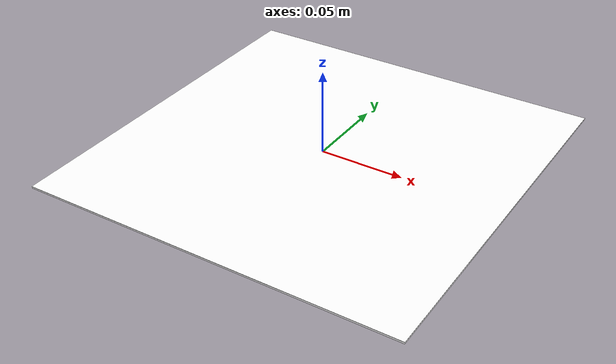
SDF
<?xml version="1.0" ?>
<sdf version="1.9">
  <model name="tag36_11_00000">
    <static>false</static>
    <link name="tag36_link">
      <inertial>
        <mass>0.01</mass>
        <inertia>
          <ixx>0.00001</ixx>
          <ixy>0</ixy>
          <ixz>0</ixz>
          <iyy>0.00001</iyy>
          <iyz>0</iyz>
          <izz>0.00001</izz>
        </inertia>
      </inertial>

      <!-- 1. Solid White Backing Body (Sides and Rear) -->
      <visual name="visual_body">
        <geometry>
          <box>
            <size>0.225 0.225 0.001</size>
          </box>
        </geometry>
        <material>
          <ambient>1 1 1 1</ambient>
          <diffuse>1 1 1 1</diffuse>
          <specular>0.1 0.1 0.1 1</specular>
        </material>
      </visual>

      <!-- 2. Textured Front Face (0.2m x 0.2m Plane offset to z=0.00051m) -->
      <visual name="visual_tag_face">
        <pose>0 0 0.00051 0 0 0</pose>
        <geometry>
          <plane>
            <normal>0 0 1</normal>
            <size>0.225 0.225</size>
          </plane>
        </geometry>
        <material>
          <ambient>1 1 1 1</ambient>
          <diffuse>1 1 1 1</diffuse>
          <specular>0.5 0.5 0.5 1</specular>
          <pbr>
            <metal>
              <albedo_map>materials/textures/tag36_11_00000.png</albedo_map>
              <roughness>0.5</roughness>
              <metalness>0.0</metalness>
            </metal>
          </pbr>
        </material>
      </visual>

    </link>
  </model>
</sdf>
